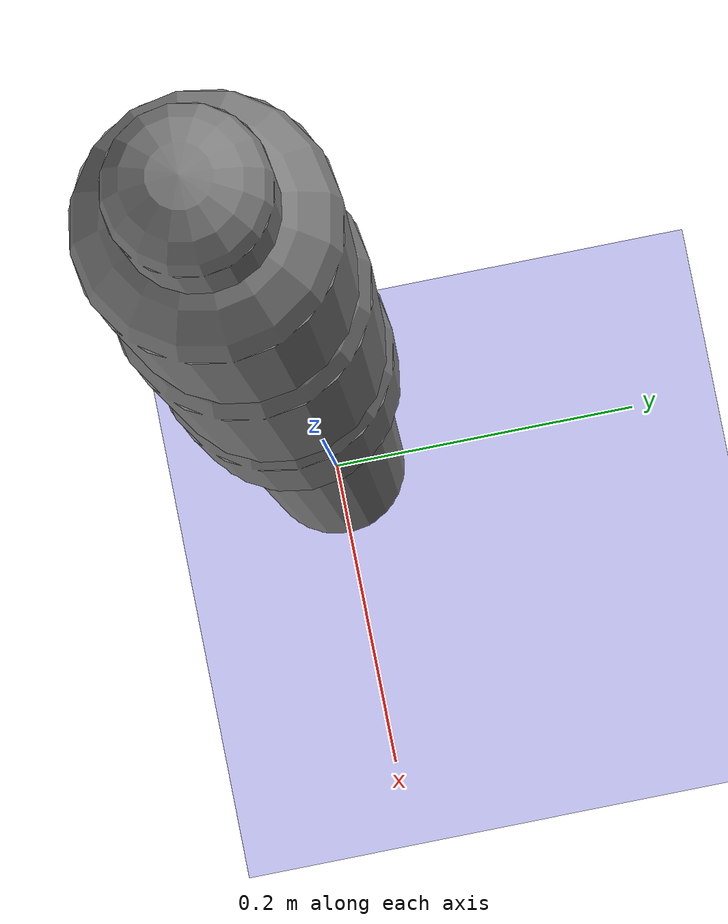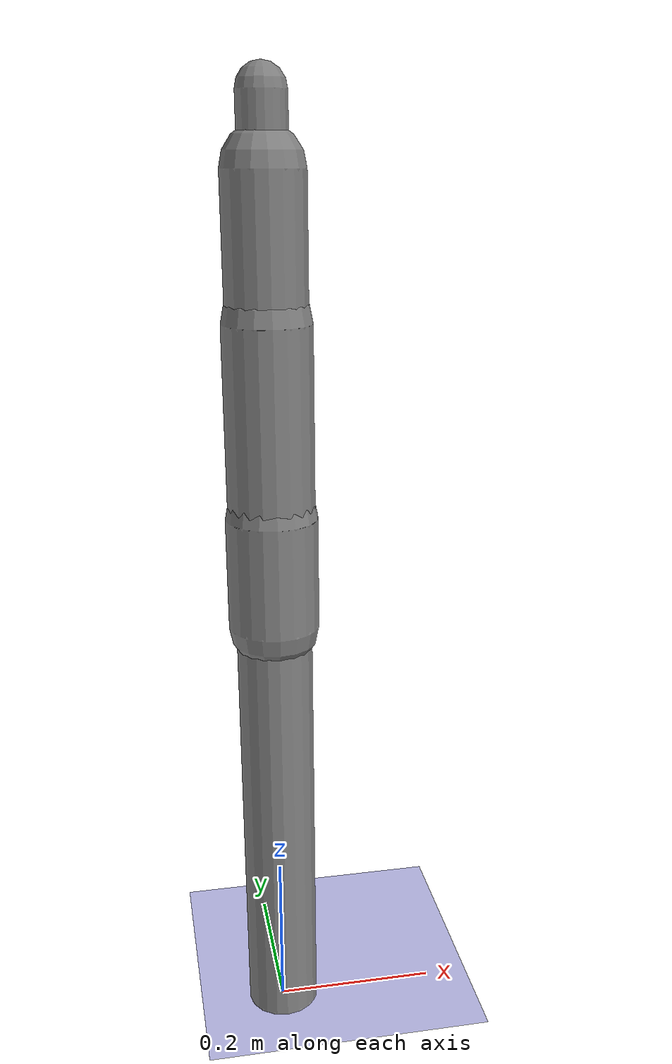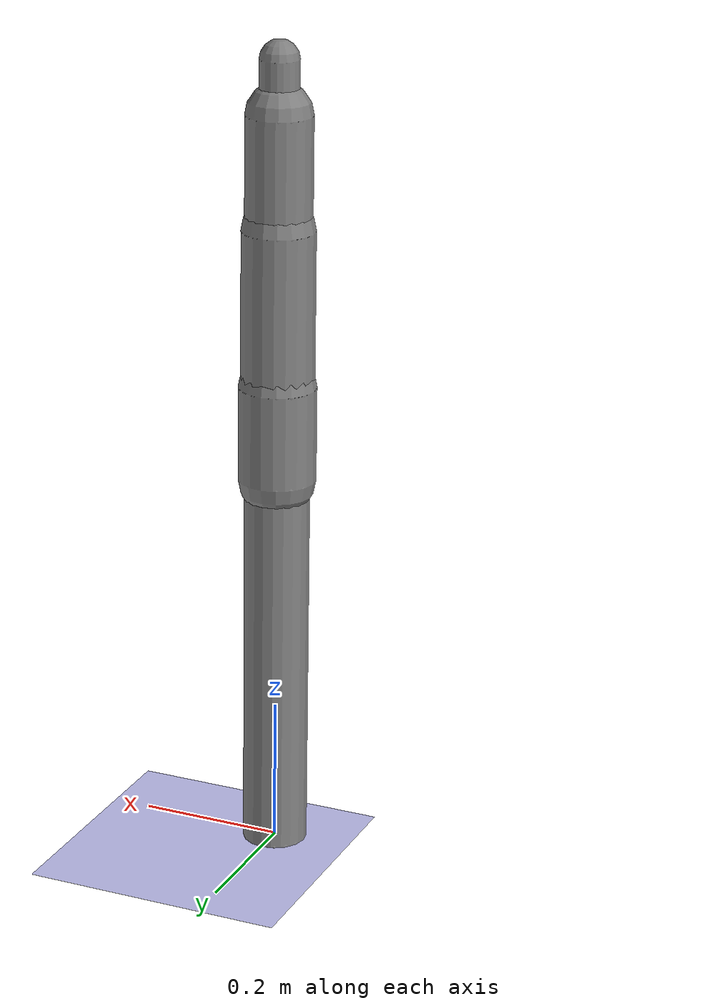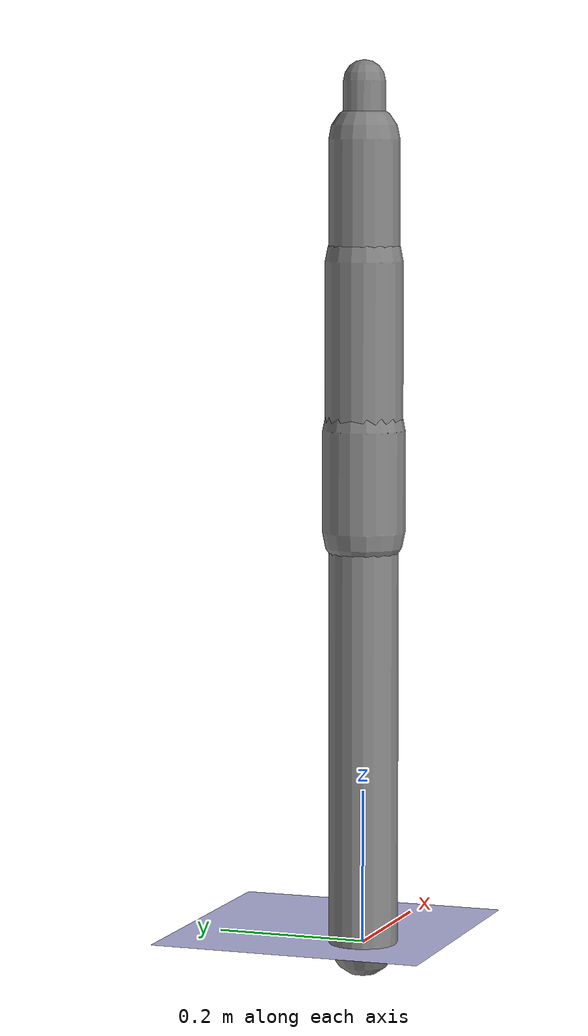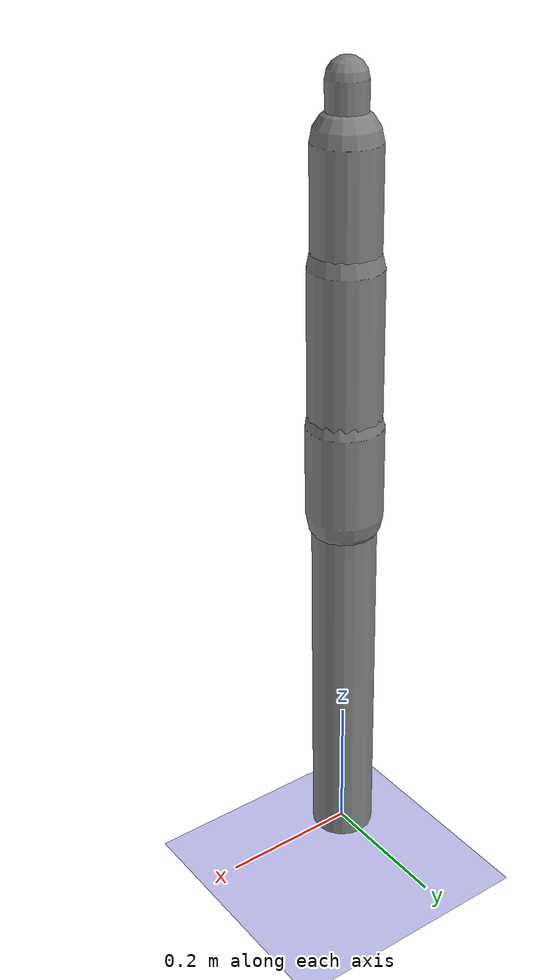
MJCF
<?xml version='1.0' encoding='UTF-8'?>
<mujoco model="robot_model">
  <worldbody>
    <light name="light" pos="0 -3 10" dir="0 0.5 -1" diffuse=".8 .8 .8" specular="0.1 0.1 0.1"/>
    <geom name="floor" type="plane" size="10.0 10.0 0.1" pos="0 0 0" rgba="0.8 0.8 1 1" contype="2" conaffinity="1"/>
    <body name="limb0" pos="0 0 0">
      <geom type="capsule" fromto="0 0 0 0 0 0.5731339368524435" size="0.04518464334655782" density="1200.0" contype="1" conaffinity="2"/>
      <site type="sphere" size="0.01" name="limb0_site0" pos="0 0 0.43034967502889043"/>
      <site type="sphere" size="0.01" name="limb0_site1" pos="0 0 0.5397237562770232"/>
      <freejoint name="limb0_root"/>
      <body name="limb1" pos="0 0 0.43034967502889043">
        <geom type="capsule" fromto="0 0 0 0 0 0.2108483557747831" size="0.03176305440673138" density="688.7771406626807" contype="1" conaffinity="2"/>
        <site type="sphere" size="0.01" name="limb1_site0" pos="0 0 0.1315488757351795"/>
        <site type="sphere" size="0.01" name="limb1_site1" pos="0 0 0.20255461164896735"/>
        <body name="limb2" pos="0 0 0.1315488757351795">
          <geom type="capsule" fromto="0 0 0 0 0 0.328612757384137" size="0.05065179609246566" density="732.5468624136837" contype="1" conaffinity="2"/>
          <joint name="joint_limb1_limb2_0" type="hinge" axis="0 1 0" range="-79.19027832141104 79.19027832141104" damping="5.0"/>
        </body>
        <body name="limb3" pos="0 0 0.20255461164896735">
          <geom type="capsule" fromto="0 0 0 0 0 0.4886525017141072" size="0.02730849030649112" density="1118.1587480940386" contype="1" conaffinity="2"/>
          <site type="sphere" size="0.01" name="limb3_site0" pos="0 0 0.2148602362279738"/>
          <site type="sphere" size="0.01" name="limb3_site1" pos="0 0 0.2502629485534305"/>
          <body name="limb4" pos="0 0 0.2148602362279738">
            <geom type="capsule" fromto="0 0 0 0 0 0.19942307054689806" size="0.04609395862756084" density="1147.4288306062897" contype="1" conaffinity="2"/>
            <joint name="joint_limb3_limb4_0" type="hinge" axis="0 1 0" range="-98.89882698854483 98.89882698854483" damping="5.0"/>
          </body>
          <body name="limb5" pos="0 0 0.2502629485534305">
            <geom type="capsule" fromto="0 0 0 0 0 0.1797215636428" size="0.026091798513952557" density="745.8119714770129" contype="1" conaffinity="2"/>
            <joint name="joint_limb3_limb5_0" type="hinge" axis="1 0 0" range="-39.46093477322345 39.46093477322345" damping="5.0"/>
          </body>
          <joint name="joint_limb1_limb3_0" type="hinge" axis="0 1 0" range="-80.38696577407528 80.38696577407528" damping="5.0"/>
        </body>
        <joint name="joint_limb0_limb1_0" type="hinge" axis="0 1 0" range="-72.78200781124774 72.78200781124774" damping="5.0"/>
      </body>
      <body name="limb6" pos="0 0 0.5397237562770232">
        <geom type="capsule" fromto="0 0 0 0 0 0.13252947652278277" size="0.05372058858359962" density="1100.1826029615775" contype="1" conaffinity="2"/>
        <site type="sphere" size="0.01" name="limb6_site0" pos="0 0 0.0018206712109859072"/>
        <body name="limb7" pos="0 0 0.0018206712109859072">
          <geom type="capsule" fromto="0 0 0 0 0 0.3297643075211269" size="0.03183707388037653" density="514.4016674114245" contype="1" conaffinity="2"/>
          <joint name="joint_limb6_limb7_0" type="hinge" axis="1 0 0" range="-63.38912243499314 63.38912243499314" damping="5.0"/>
        </body>
        <joint name="joint_limb0_limb6_0" type="hinge" axis="0 1 0" range="-46.186401585393725 46.186401585393725" damping="5.0"/>
      </body>
    </body>
  </worldbody>
  <actuator>
    <position name="position_actuator_joint_limb0_limb1_0" joint="joint_limb0_limb1_0" gear="1.0330237717590445" inheritrange="1" kp="100.0"/>
    <position name="position_actuator_joint_limb1_limb2_0" joint="joint_limb1_limb2_0" gear="1.0104857860709995" inheritrange="1" kp="100.0"/>
    <position name="position_actuator_joint_limb1_limb3_0" joint="joint_limb1_limb3_0" gear="1.272740550353963" inheritrange="1" kp="100.0"/>
    <position name="position_actuator_joint_limb3_limb4_0" joint="joint_limb3_limb4_0" gear="1.1120952926298953" inheritrange="1" kp="100.0"/>
    <position name="position_actuator_joint_limb3_limb5_0" joint="joint_limb3_limb5_0" gear="1.6699171564828723" inheritrange="1" kp="100.0"/>
    <position name="position_actuator_joint_limb0_limb6_0" joint="joint_limb0_limb6_0" gear="0.5181521235082891" inheritrange="1" kp="100.0"/>
    <position name="position_actuator_joint_limb6_limb7_0" joint="joint_limb6_limb7_0" gear="1.6432957577888294" inheritrange="1" kp="100.0"/>
  </actuator>
</mujoco>
